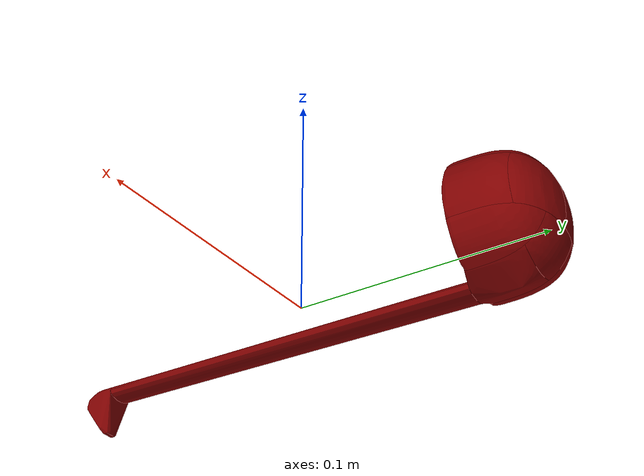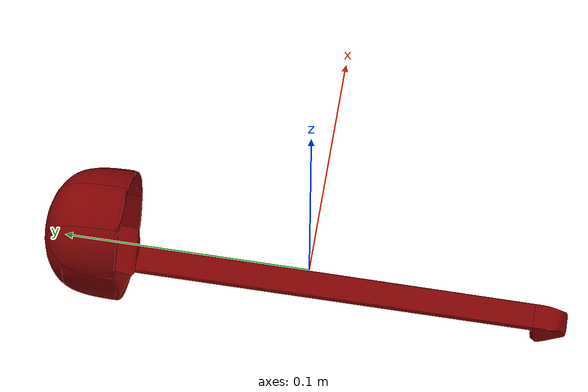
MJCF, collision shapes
<mujoco model="ladle_5">
  <asset>
    <mesh file="visual/model_normalized_0.obj" name="model_normalized_0_vis" scale="0.21000000000000002 0.21000000000000002 0.21000000000000002" refquat="0.034696085253970374 -0.034696085253970416 -0.7062550401009893 0.7062550401009896"/>
    <material name="Default" specular="0.5" shininess="0.902912463" rgba="1.000000 1.000000 1.000000 1.0"/>
    <mesh file="collision/collision_mesh_collision_0.obj" name="ladle_collision_mesh_0" scale="0.21000000000000002 0.21000000000000002 0.21000000000000002" refquat="0.034696085253970374 -0.034696085253970416 -0.7062550401009893 0.7062550401009896"/>
    <mesh file="collision/collision_mesh_collision_1.obj" name="ladle_collision_mesh_1" scale="0.21000000000000002 0.21000000000000002 0.21000000000000002" refquat="0.034696085253970374 -0.034696085253970416 -0.7062550401009893 0.7062550401009896"/>
    <mesh file="collision/collision_mesh_collision_2.obj" name="ladle_collision_mesh_2" scale="0.21000000000000002 0.21000000000000002 0.21000000000000002" refquat="0.034696085253970374 -0.034696085253970416 -0.7062550401009893 0.7062550401009896"/>
    <mesh file="collision/collision_mesh_collision_3.obj" name="ladle_collision_mesh_3" scale="0.21000000000000002 0.21000000000000002 0.21000000000000002" refquat="0.034696085253970374 -0.034696085253970416 -0.7062550401009893 0.7062550401009896"/>
    <mesh file="collision/collision_mesh_collision_4.obj" name="ladle_collision_mesh_4" scale="0.21000000000000002 0.21000000000000002 0.21000000000000002" refquat="0.034696085253970374 -0.034696085253970416 -0.7062550401009893 0.7062550401009896"/>
    <mesh file="collision/collision_mesh_collision_5.obj" name="ladle_collision_mesh_5" scale="0.21000000000000002 0.21000000000000002 0.21000000000000002" refquat="0.034696085253970374 -0.034696085253970416 -0.7062550401009893 0.7062550401009896"/>
    <mesh file="collision/collision_mesh_collision_6.obj" name="ladle_collision_mesh_6" scale="0.21000000000000002 0.21000000000000002 0.21000000000000002" refquat="0.034696085253970374 -0.034696085253970416 -0.7062550401009893 0.7062550401009896"/>
    <mesh file="collision/collision_mesh_collision_7.obj" name="ladle_collision_mesh_7" scale="0.21000000000000002 0.21000000000000002 0.21000000000000002" refquat="0.034696085253970374 -0.034696085253970416 -0.7062550401009893 0.7062550401009896"/>
    <mesh file="collision/collision_mesh_collision_8.obj" name="ladle_collision_mesh_8" scale="0.21000000000000002 0.21000000000000002 0.21000000000000002" refquat="0.034696085253970374 -0.034696085253970416 -0.7062550401009893 0.7062550401009896"/>
    <mesh file="collision/collision_mesh_collision_9.obj" name="ladle_collision_mesh_9" scale="0.21000000000000002 0.21000000000000002 0.21000000000000002" refquat="0.034696085253970374 -0.034696085253970416 -0.7062550401009893 0.7062550401009896"/>
    <mesh file="collision/collision_mesh_collision_10.obj" name="ladle_collision_mesh_10" scale="0.21000000000000002 0.21000000000000002 0.21000000000000002" refquat="0.034696085253970374 -0.034696085253970416 -0.7062550401009893 0.7062550401009896"/>
    <mesh file="collision/collision_mesh_collision_11.obj" name="ladle_collision_mesh_11" scale="0.21000000000000002 0.21000000000000002 0.21000000000000002" refquat="0.034696085253970374 -0.034696085253970416 -0.7062550401009893 0.7062550401009896"/>
    <mesh file="collision/collision_mesh_collision_12.obj" name="ladle_collision_mesh_12" scale="0.21000000000000002 0.21000000000000002 0.21000000000000002" refquat="0.034696085253970374 -0.034696085253970416 -0.7062550401009893 0.7062550401009896"/>
  </asset>
  <default>
    <default class="region">
      <geom group="1" conaffinity="0" contype="0" rgba="0 1 0 0"/>
    </default>
    <default class="collision">
      <geom group="0" rgba="0.5 0 0 0.5" density="1000.0"/>
    </default>
  </default>
  <worldbody>
    <body>
      <body name="object">
        <geom solimp="0.998 0.998 0.001" solref="0.001 1" density="100" friction="0.95 0.3 0.1" type="mesh" mesh="model_normalized_0_vis" conaffinity="0" contype="0" group="1" material="Default"/>
        <geom class="region" name="reg_bbox" type="box" pos="-0.0008271403514444695 0.00023534401196857738 0.0003850709638353256" size="0.02618583508518787 0.10584773064807854 0.03419201872616409"/>
        <geom mesh="ladle_collision_mesh_0" type="mesh" class="collision"/>
        <geom mesh="ladle_collision_mesh_1" type="mesh" class="collision"/>
        <geom mesh="ladle_collision_mesh_2" type="mesh" class="collision"/>
        <geom mesh="ladle_collision_mesh_3" type="mesh" class="collision"/>
        <geom mesh="ladle_collision_mesh_4" type="mesh" class="collision"/>
        <geom mesh="ladle_collision_mesh_5" type="mesh" class="collision"/>
        <geom mesh="ladle_collision_mesh_6" type="mesh" class="collision"/>
        <geom mesh="ladle_collision_mesh_7" type="mesh" class="collision"/>
        <geom mesh="ladle_collision_mesh_8" type="mesh" class="collision"/>
        <geom mesh="ladle_collision_mesh_9" type="mesh" class="collision"/>
        <geom mesh="ladle_collision_mesh_10" type="mesh" class="collision"/>
        <geom mesh="ladle_collision_mesh_11" type="mesh" class="collision"/>
        <geom mesh="ladle_collision_mesh_12" type="mesh" class="collision"/>
      </body>
    </body>
  </worldbody>
</mujoco>
